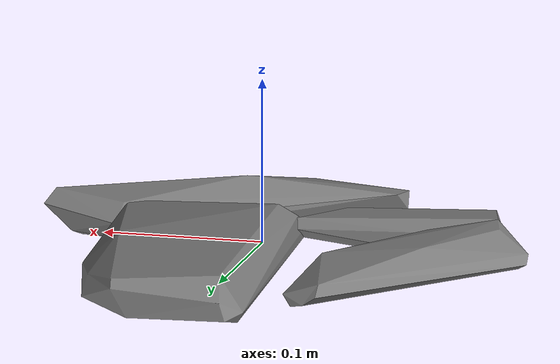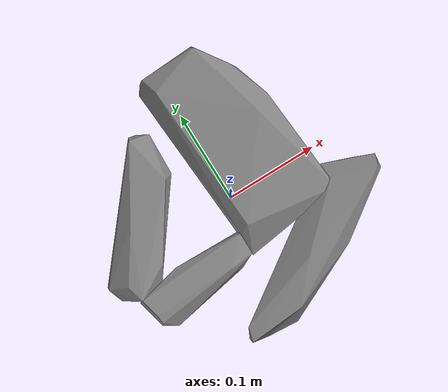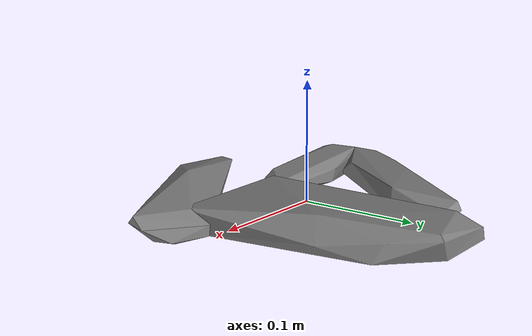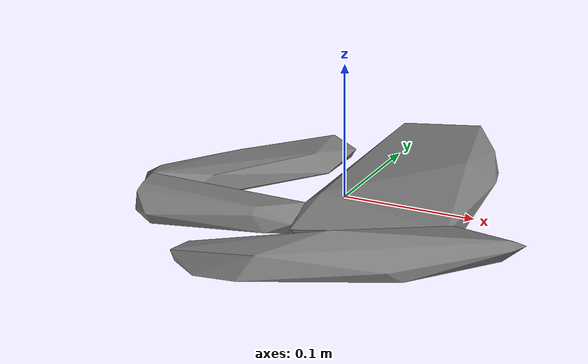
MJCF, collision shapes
<mujoco model="chain">
  <compiler angle="radian" />

  <asset>
    <mesh name="chain_visual_mesh" file="chain/textured.obj" />
    <mesh name="chain_collision_mesh_0" file="chain/textured_coacd_0.stl" />
    <mesh name="chain_collision_mesh_1" file="chain/textured_coacd_1.stl" />
    <mesh name="chain_collision_mesh_2" file="chain/textured_coacd_2.stl" />
    <mesh name="chain_collision_mesh_3" file="chain/textured_coacd_3.stl" />
    <texture name="chain_texture" type="2d" file="chain/texture_map.png" />
    <material name="chain_material" texture="chain_texture" />
  </asset>

  <worldbody>
    <body name="chain" pos="0 0 0" euler="0 0 0">
      <freejoint name="chain_joint" />
      <geom name="chain_visual_geom" type="mesh" mesh="chain_visual_mesh" material="chain_material" pos="0.034274940120650695 -0.018175325943306266 -0.009010247611937368" euler="0 0 0" contype="0" conaffinity="0" group="0" />
      <geom name="chain_collision_geom_0" type="mesh" mesh="chain_collision_mesh_0" pos="0.034274940120650695 -0.018175325943306266 -0.009010247611937368" euler="0 0 0" contype="1" conaffinity="1" group="3" />
      <geom name="chain_collision_geom_1" type="mesh" mesh="chain_collision_mesh_1" pos="0.034274940120650695 -0.018175325943306266 -0.009010247611937368" euler="0 0 0" contype="1" conaffinity="1" group="3" />
      <geom name="chain_collision_geom_2" type="mesh" mesh="chain_collision_mesh_2" pos="0.034274940120650695 -0.018175325943306266 -0.009010247611937368" euler="0 0 0" contype="1" conaffinity="1" group="3" />
      <geom name="chain_collision_geom_3" type="mesh" mesh="chain_collision_mesh_3" pos="0.034274940120650695 -0.018175325943306266 -0.009010247611937368" euler="0 0 0" contype="1" conaffinity="1" group="3" />
      <inertial pos="0 0 0" euler="0 0 0" mass="0.1" diaginertia="0.001 0.001 0.001" />
    </body>
  </worldbody>
</mujoco>
